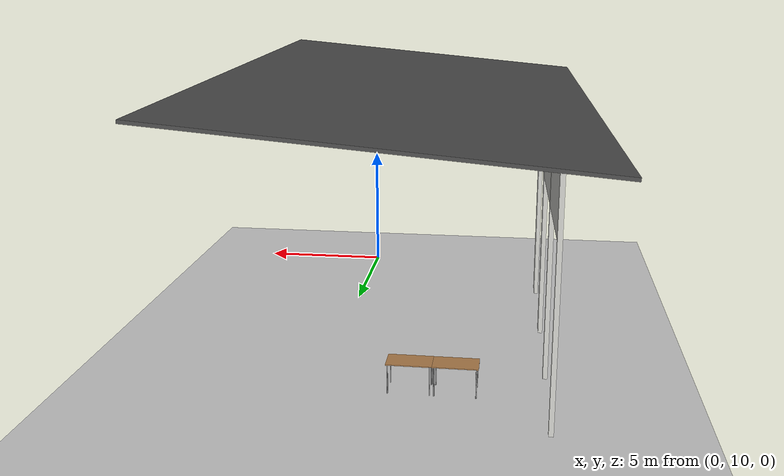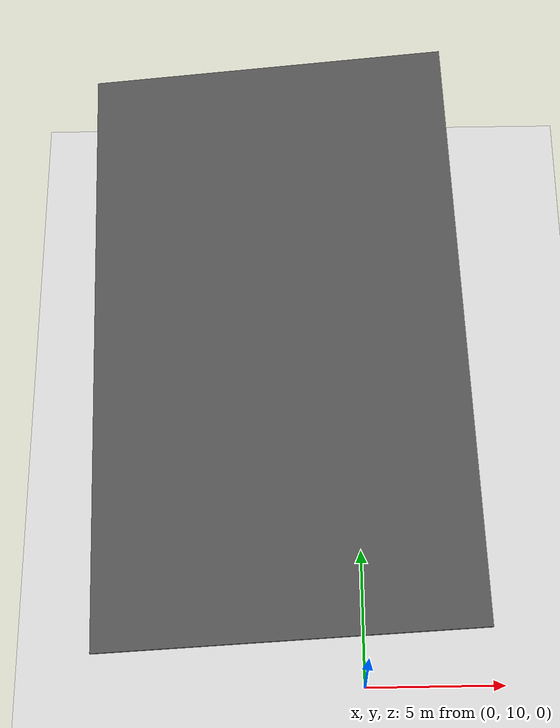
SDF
<sdf version="1.7">
 <world name="default">
  <model name="ground_plane">
   <static>1</static>
   <link name="link">
    <collision name="collision">
     <geometry><plane><normal>0 0 1</normal><size>100 100</size></plane></geometry>
     <surface><friction><ode><mu>100</mu><mu2>50</mu2></ode></friction></surface>
    </collision>
    <visual name="visual">
     <cast_shadows>0</cast_shadows>
     <geometry><plane><normal>0 0 1</normal><size>100 100</size></plane></geometry>
     <material>
      <script><uri>file://media/materials/scripts/gazebo.material</uri><name>Gazebo/Grey</name></script>
     </material>
    </visual>
   </link>
  </model>
  <model name="vehicle_test2">
   <pose>-3.81712 12.6311 0 0 -0 0</pose>
   <link name="Wall_9">
    <pose>-3.60193 6.50443 0 0 -0 1.59369</pose>
    <visual name="Wall_9_Visual_0">
     <pose>-5.76254 0 4.5 0 -0 0</pose>
     <geometry><box><size>0.72809 0.15 9</size></box></geometry>
     <material>
      <script><uri>file://media/materials/scripts/gazebo.material</uri><name>Gazebo/CeilingTiled</name></script>
      <ambient>1 1 1 1</ambient>
     </material>
     <meta><layer>0</layer></meta>
    </visual>
    <collision name="Wall_9_Collision_0">
     <geometry><box><size>0.72809 0.15 9</size></box></geometry>
     <pose>-5.76254 0 4.5 0 -0 0</pose>
    </collision>
    <visual name="Wall_9_Visual_1">
     <pose>-1.62059 0 4.5 0 -0 0</pose>
     <geometry><box><size>0.555807 0.15 9</size></box></geometry>
     <material>
      <script><uri>file://media/materials/scripts/gazebo.material</uri><name>Gazebo/CeilingTiled</name></script>
      <ambient>1 1 1 1</ambient>
     </material>
     <meta><layer>0</layer></meta>
    </visual>
    <collision name="Wall_9_Collision_1">
     <geometry><box><size>0.555807 0.15 9</size></box></geometry>
     <pose>-1.62059 0 4.5 0 -0 0</pose>
    </collision>
    <visual name="Wall_9_Visual_2">
     <pose>2.29618 0 4.5 0 -0 0</pose>
     <geometry><box><size>0.277727 0.15 9</size></box></geometry>
     <material>
      <script><uri>file://media/materials/scripts/gazebo.material</uri><name>Gazebo/CeilingTiled</name></script>
      <ambient>1 1 1 1</ambient>
     </material>
     <meta><layer>0</layer></meta>
    </visual>
    <collision name="Wall_9_Collision_2">
     <geometry><box><size>0.277727 0.15 9</size></box></geometry>
     <pose>2.29618 0 4.5 0 -0 0</pose>
    </collision>
    <visual name="Wall_9_Visual_3">
     <pose>6.03081 0 4.5 0 -0 0</pose>
     <geometry><box><size>0.191546 0.15 9</size></box></geometry>
     <material>
      <script><uri>file://media/materials/scripts/gazebo.material</uri><name>Gazebo/CeilingTiled</name></script>
      <ambient>1 1 1 1</ambient>
     </material>
     <meta><layer>0</layer></meta>
    </visual>
    <collision name="Wall_9_Collision_3">
     <geometry><box><size>0.191546 0.15 9</size></box></geometry>
     <pose>6.03081 0 4.5 0 -0 0</pose>
    </collision>
    <visual name="Wall_9_Visual_4">
     <pose>-3.6485 0 7.5 0 -0 0</pose>
     <geometry><box><size>3.5 0.15 3</size></box></geometry>
     <material>
      <script><uri>file://media/materials/scripts/gazebo.material</uri><name>Gazebo/CeilingTiled</name></script>
      <ambient>1 1 1 1</ambient>
     </material>
     <meta><layer>0</layer></meta>
    </visual>
    <collision name="Wall_9_Collision_4">
     <geometry><box><size>3.5 0.15 3</size></box></geometry>
     <pose>-3.6485 0 7.5 0 -0 0</pose>
    </collision>
    <visual name="Wall_9_Visual_5">
     <pose>0.407312 0 7.5 0 -0 0</pose>
     <geometry><box><size>3.5 0.15 3</size></box></geometry>
     <material>
      <script><uri>file://media/materials/scripts/gazebo.material</uri><name>Gazebo/CeilingTiled</name></script>
      <ambient>1 1 1 1</ambient>
     </material>
     <meta><layer>0</layer></meta>
    </visual>
    <collision name="Wall_9_Collision_5">
     <geometry><box><size>3.5 0.15 3</size></box></geometry>
     <pose>0.407312 0 7.5 0 -0 0</pose>
    </collision>
    <visual name="Wall_9_Visual_6">
     <pose>4.18504 0 7.5 0 -0 0</pose>
     <geometry><box><size>3.5 0.15 3</size></box></geometry>
     <material>
      <script><uri>file://media/materials/scripts/gazebo.material</uri><name>Gazebo/CeilingTiled</name></script>
      <ambient>1 1 1 1</ambient>
     </material>
     <meta><layer>0</layer></meta>
    </visual>
    <collision name="Wall_9_Collision_6">
     <geometry><box><size>3.5 0.15 3</size></box></geometry>
     <pose>4.18504 0 7.5 0 -0 0</pose>
    </collision>
   </link>
   <static>1</static>
  </model>
  <model name="table_0">
   <static>1</static>
   <link name="link">
    <collision name="surface">
     <pose>0 0 1 0 -0 0</pose>
     <geometry><box><size>1.5 0.8 0.03</size></box></geometry>
     <surface><friction><ode><mu>0.6</mu><mu2>0.6</mu2></ode></friction></surface>
    </collision>
    <visual name="visual1">
     <pose>0 0 1 0 -0 0</pose>
     <geometry><box><size>1.5 0.8 0.03</size></box></geometry>
     <material>
      <script><uri>file://media/materials/scripts/gazebo.material</uri><name>Gazebo/Wood</name></script>
     </material>
    </visual>
    <collision name="front_left_leg">
     <pose>0.68 0.38 0.5 0 -0 0</pose>
     <geometry><cylinder><radius>0.02</radius><length>1</length></cylinder></geometry>
    </collision>
    <visual name="front_left_leg">
     <pose>0.68 0.38 0.5 0 -0 0</pose>
     <geometry><cylinder><radius>0.02</radius><length>1</length></cylinder></geometry>
     <material>
      <script><uri>file://media/materials/scripts/gazebo.material</uri><name>Gazebo/Grey</name></script>
     </material>
    </visual>
    <collision name="front_right_leg">
     <pose>0.68 -0.38 0.5 0 -0 0</pose>
     <geometry><cylinder><radius>0.02</radius><length>1</length></cylinder></geometry>
    </collision>
    <visual name="front_right_leg">
     <pose>0.68 -0.38 0.5 0 -0 0</pose>
     <geometry><cylinder><radius>0.02</radius><length>1</length></cylinder></geometry>
     <material>
      <script><uri>file://media/materials/scripts/gazebo.material</uri><name>Gazebo/Grey</name></script>
     </material>
    </visual>
    <collision name="back_right_leg">
     <pose>-0.68 -0.38 0.5 0 -0 0</pose>
     <geometry><cylinder><radius>0.02</radius><length>1</length></cylinder></geometry>
    </collision>
    <visual name="back_right_leg">
     <pose>-0.68 -0.38 0.5 0 -0 0</pose>
     <geometry><cylinder><radius>0.02</radius><length>1</length></cylinder></geometry>
     <material>
      <script><uri>file://media/materials/scripts/gazebo.material</uri><name>Gazebo/Grey</name></script>
     </material>
    </visual>
    <collision name="back_left_leg">
     <pose>-0.68 0.38 0.5 0 -0 0</pose>
     <geometry><cylinder><radius>0.02</radius><length>1</length></cylinder></geometry>
    </collision>
    <visual name="back_left_leg">
     <pose>-0.68 0.38 0.5 0 -0 0</pose>
     <geometry><cylinder><radius>0.02</radius><length>1</length></cylinder></geometry>
     <material>
      <script><uri>file://media/materials/scripts/gazebo.material</uri><name>Gazebo/Grey</name></script>
     </material>
    </visual>
   </link>
   <pose>-4.57717 22.8018 0 0 -0 0</pose>
  </model>
  <model name="table_2">
   <static>1</static>
   <link name="link">
    <collision name="surface">
     <pose>0 0 1 0 -0 0</pose>
     <geometry><box><size>1.5 0.8 0.03</size></box></geometry>
     <surface><friction><ode><mu>0.6</mu><mu2>0.6</mu2></ode></friction></surface>
    </collision>
    <visual name="visual1">
     <pose>0 0 1 0 -0 0</pose>
     <geometry><box><size>1.5 0.8 0.03</size></box></geometry>
     <material>
      <script><uri>file://media/materials/scripts/gazebo.material</uri><name>Gazebo/Wood</name></script>
     </material>
    </visual>
    <collision name="front_left_leg">
     <pose>0.68 0.38 0.5 0 -0 0</pose>
     <geometry><cylinder><radius>0.02</radius><length>1</length></cylinder></geometry>
    </collision>
    <visual name="front_left_leg">
     <pose>0.68 0.38 0.5 0 -0 0</pose>
     <geometry><cylinder><radius>0.02</radius><length>1</length></cylinder></geometry>
     <material>
      <script><uri>file://media/materials/scripts/gazebo.material</uri><name>Gazebo/Grey</name></script>
     </material>
    </visual>
    <collision name="front_right_leg">
     <pose>0.68 -0.38 0.5 0 -0 0</pose>
     <geometry><cylinder><radius>0.02</radius><length>1</length></cylinder></geometry>
    </collision>
    <visual name="front_right_leg">
     <pose>0.68 -0.38 0.5 0 -0 0</pose>
     <geometry><cylinder><radius>0.02</radius><length>1</length></cylinder></geometry>
     <material>
      <script><uri>file://media/materials/scripts/gazebo.material</uri><name>Gazebo/Grey</name></script>
     </material>
    </visual>
    <collision name="back_right_leg">
     <pose>-0.68 -0.38 0.5 0 -0 0</pose>
     <geometry><cylinder><radius>0.02</radius><length>1</length></cylinder></geometry>
    </collision>
    <visual name="back_right_leg">
     <pose>-0.68 -0.38 0.5 0 -0 0</pose>
     <geometry><cylinder><radius>0.02</radius><length>1</length></cylinder></geometry>
     <material>
      <script><uri>file://media/materials/scripts/gazebo.material</uri><name>Gazebo/Grey</name></script>
     </material>
    </visual>
    <collision name="back_left_leg">
     <pose>-0.68 0.38 0.5 0 -0 0</pose>
     <geometry><cylinder><radius>0.02</radius><length>1</length></cylinder></geometry>
    </collision>
    <visual name="back_left_leg">
     <pose>-0.68 0.38 0.5 0 -0 0</pose>
     <geometry><cylinder><radius>0.02</radius><length>1</length></cylinder></geometry>
     <material>
      <script><uri>file://media/materials/scripts/gazebo.material</uri><name>Gazebo/Grey</name></script>
     </material>
    </visual>
   </link>
   <pose>-3.07778 22.7969 0 0 -0 0</pose>
  </model>
  <model name="asphalt_plane">
   <static>1</static>
   <link name="link">
    <collision name="collision"><geometry><box><size>11.8707 20 0.1</size></box></geometry></collision>
    <visual name="visual">
     <cast_shadows>0</cast_shadows>
     <geometry><box><size>11.8707 20 0.1</size></box></geometry>
     <material>
      <script>
       <uri>model://asphalt_plane/materials/scripts</uri>
       <uri>model://asphalt_plane/materials/textures</uri>
       <name>vrc/asphalt</name>
      </script>
     </material>
    </visual>
   </link>
   <pose>-2.79925 19.6291 9.44458 -0.004475 -0.093342 0.032301</pose>
  </model>
 </world>
</sdf>
